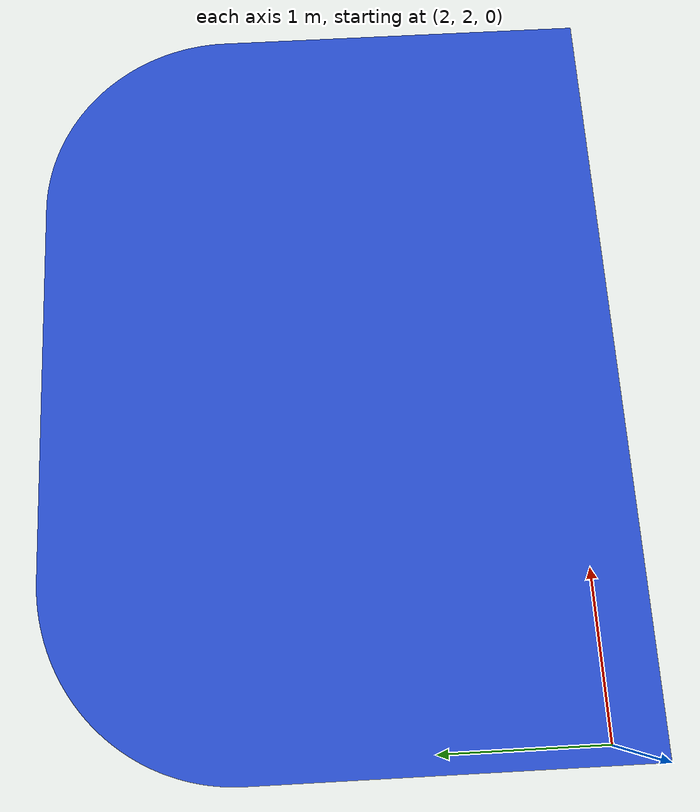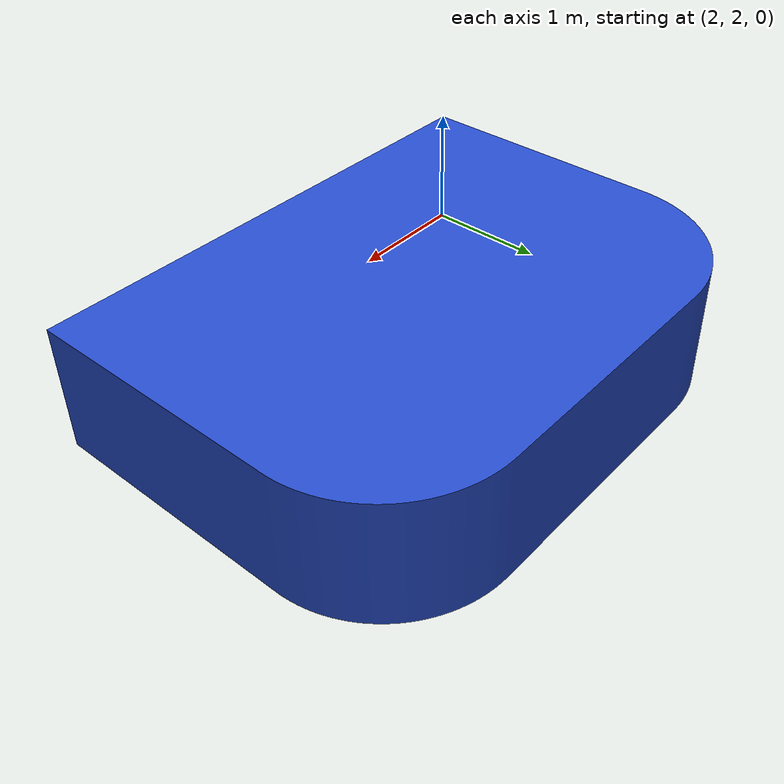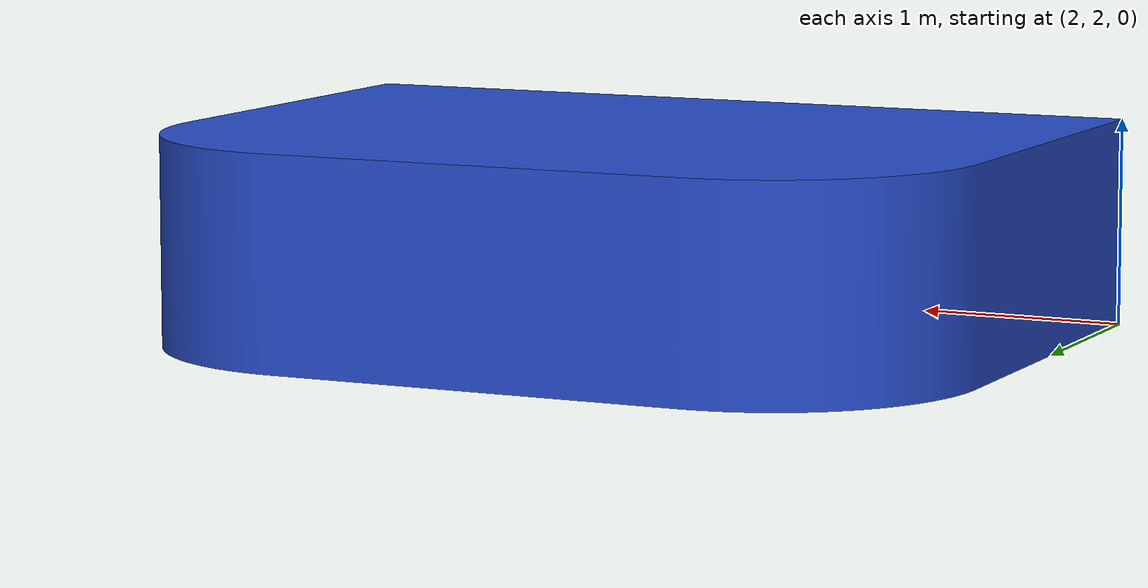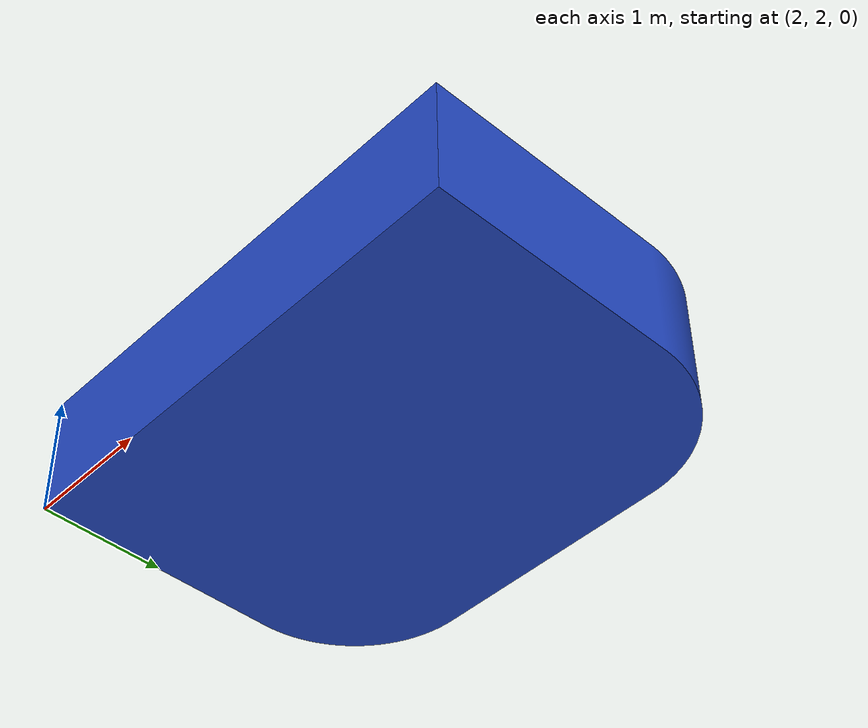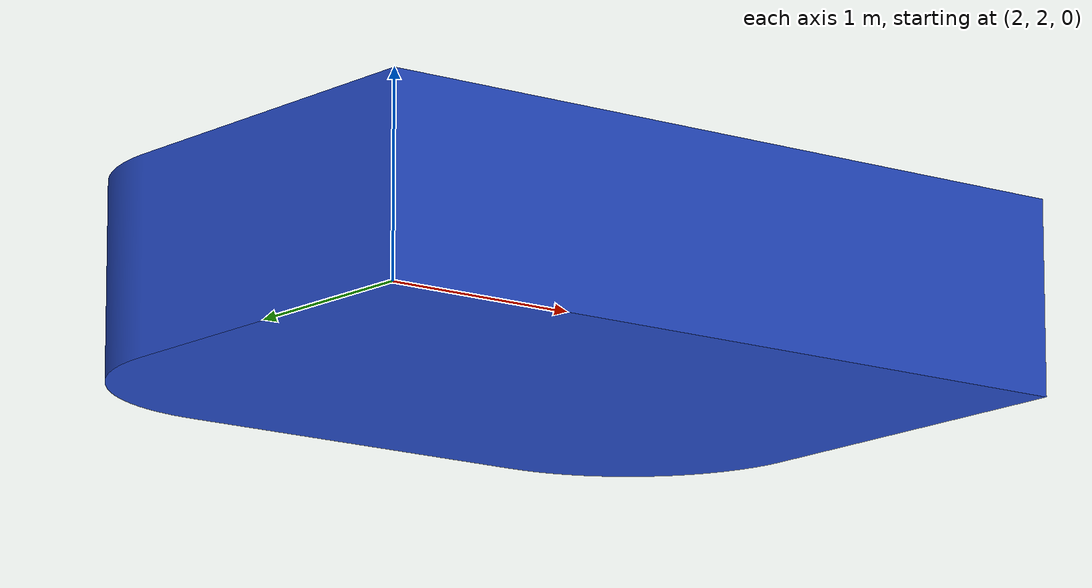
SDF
<sdf version='1.4'>
    <model name='D_shape'>
      <static>1</static>
	<link name='symbol'>

        <collision name='body'>
        <pose>0 0 0 0 0 0</pose>
        <geometry>
          <mesh>
            <uri>model://D_shape/meshes/d_shape.dae</uri>
            <scale>1 1 1</scale>
          </mesh>
        </geometry>
        <max_contacts>10</max_contacts>
        <surface>
          <bounce/>
          <friction>
            <ode/>
          </friction>
          <contact>
            <ode/>
          </contact>
        </surface>
      </collision>

      <visual name='body'>
        <pose>0 0 0 0 0 0</pose>
        <geometry>
          <mesh>
            <uri>model://D_shape/meshes/d_shape.dae</uri>
            <scale>1 1 1</scale>
          </mesh>
        </geometry>
        <material>
          <script>
            <uri>file://media/materials/scripts/gazebo.material</uri>
            <name>Gazebo/Blue</name>
          </script>
        </material>
      </visual>
    </link>
  </model>
</sdf>
